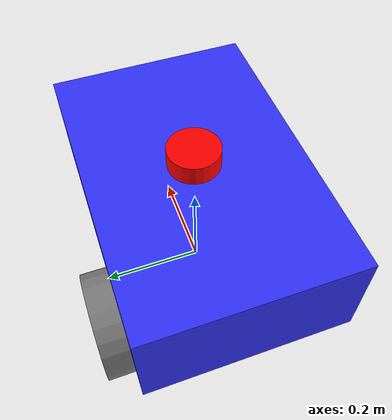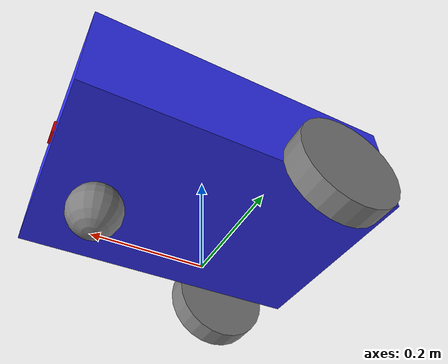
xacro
<?xml version="1.0"?>
<robot name="pickup_bot" xmlns:xacro="http://www.ros.org/wiki/xacro">

    <xacro:include filename="common_properties.xacro" />
    <xacro:include filename="mobile_base.xacro" />
    <xacro:include filename="lidar.xacro" />
    <xacro:include filename="camera.xacro" />
    <xacro:include filename="gazebo_control.xacro" />

</robot>

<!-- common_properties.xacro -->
<robot xmlns:xacro="http://www.ros.org/wiki/xacro">

    <material name="blue">
        <color rgba="0.2 0.2 1 1" />
    </material>

    <material name="grey">
        <color rgba="0.5 0.5 0.5 1" />
    </material>

    <material name="white">
        <color rgba="1 1 1 1" />
    </material>

    <material name="black">
        <color rgba="0 0 0 1" />
    </material>

    <material name="orange">
        <color rgba="1 0.3 0.1 1" />
    </material>

    <material name="red">
        <color rgba="1 0 0 1" />
    </material>

    <xacro:macro name="box_inertia" params="m l w h xyz rpy">
        <inertial>
            <origin xyz="${xyz}" rpy="${rpy}" />
            <mass value="${m}" />
            <inertia ixx="${(m/12) * (h*h + l*l)}" ixy="0" ixz="0"
                     iyy="${(m/12) * (w*w + l*l)}" iyz="0"
                     izz="${(m/12) * (w*w + h*h)}" />
        </inertial>
    </xacro:macro>

    <xacro:macro name="cylinder_inertia" params="m r h xyz rpy">
        <inertial>
            <origin xyz="${xyz}" rpy="${rpy}" />
            <mass value="${m}" />
            <inertia ixx="${(m/12) * (3*r*r + h*h)}" ixy="0" ixz="0"
                     iyy="${(m/12) * (3*r*r + h*h)}" iyz="0"
                     izz="${(m/2) * (r*r)}" />
        </inertial>
    </xacro:macro>

    <xacro:macro name="sphere_inertia" params="m r xyz rpy">
        <inertial>
            <origin xyz="${xyz}" rpy="${rpy}" />
            <mass value="${m}" />
            <inertia ixx="${(2/5) * m * r * r}" ixy="0" ixz="0"
                     iyy="${(2/5) * m * r * r}" iyz="0"
                     izz="${(2/5) * m * r * r}" />
        </inertial>
    </xacro:macro>

</robot>

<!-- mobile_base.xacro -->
<robot xmlns:xacro="http://www.ros.org/wiki/xacro">

    <xacro:property name="base_length" value="0.6" />
    <xacro:property name="base_width" value="0.4" />
    <xacro:property name="base_height" value="0.2" />
    <xacro:property name="wheel_radius" value="0.1" />
    <xacro:property name="wheel_length" value="0.05" />

    <link name="base_footprint" />

    <link name="base_link">
        <visual>
            <geometry>
                <box size="${base_length} ${base_width} ${base_height}" />
            </geometry>
            <origin xyz="0 0 ${base_height / 2.0}" rpy="0 0 0" />
            <material name="blue" />
        </visual>
        <collision>
            <geometry>
                <box size="${base_length} ${base_width} ${base_height}" />
            </geometry>
            <origin xyz="0 0 ${base_height / 2.0}" rpy="0 0 0" />
        </collision>
        <xacro:box_inertia m="5.0" l="${2*base_length}" w="${2*base_width}" h="${2*base_height}"
                           xyz="0 0 ${base_height / 2.0}" rpy="0 0 0" />
    </link>

    <xacro:macro name="wheel_link" params="prefix">
        <link name="${prefix}_wheel_link">
            <visual>
                <geometry>
                    <cylinder radius="${wheel_radius}" length="${wheel_length}" />
                </geometry>
                <origin xyz="0 0 0" rpy="${pi / 2.0} 0 0" />
                <material name="grey" />
            </visual>
            <collision>
                <geometry>
                    <cylinder radius="${wheel_radius}" length="${wheel_length}" />
                </geometry>
                <origin xyz="0 0 0" rpy="${pi / 2.0} 0 0" />
            </collision>
            <xacro:cylinder_inertia m="1.0" r="${2*wheel_radius}" h="${2*wheel_length}"
                                    xyz="0 0 0" rpy="${pi / 2.0} 0 0" />
        </link>
    </xacro:macro>

    <xacro:wheel_link prefix="right" />
    <xacro:wheel_link prefix="left" />

    <link name="caster_wheel_link">
        <visual>
            <geometry>
                <sphere radius="${wheel_radius / 2.0}" />
            </geometry>
            <origin xyz="0 0 0" rpy="0 0 0" />
            <material name="grey" />
        </visual>
        <collision>
            <geometry>
                <sphere radius="${wheel_radius / 2.0}" />
            </geometry>
            <origin xyz="0 0 0" rpy="0 0 0" />
        </collision>
        <xacro:sphere_inertia m="0.5" r="${2*wheel_radius / 2.0}"
                              xyz="0 0 0" rpy="0 0 0" />
    </link>

    <joint name="base_joint" type="fixed">
        <parent link="base_footprint" />
        <child link="base_link" />
        <origin xyz="0 0 ${wheel_radius}" rpy="0 0 0"/>
    </joint>

    <joint name="base_right_wheel_joint" type="continuous">
        <parent link="base_link" />
        <child link="right_wheel_link" />
        <origin xyz="${-base_length / 4.0} ${-(base_width + wheel_length) / 2.0} 0" rpy="0 0 0" />
        <axis xyz="0 1 0" />
    </joint>

    <joint name="base_left_wheel_joint" type="continuous">
        <parent link="base_link" />
        <child link="left_wheel_link" />
        <origin xyz="${-base_length / 4.0} ${(base_width + wheel_length) / 2.0} 0" rpy="0 0 0" />
        <axis xyz="0 1 0" />
    </joint>

    <joint name="base_caster_wheel_joint" type="fixed">
        <parent link="base_link" />
        <child link="caster_wheel_link" />
        <origin xyz="${base_length / 3.0} 0 ${-wheel_radius / 2.0}" rpy="0 0 0" />
    </joint>

    <gazebo reference="base_link">
        <material>Gazebo/Blue</material>
    </gazebo>

    <gazebo reference="right_wheel_link">
        <material>Gazebo/Grey</material>
    </gazebo>

    <gazebo reference="left_wheel_link">
        <material>Gazebo/Grey</material>
    </gazebo>

    <gazebo reference="caster_wheel_link">
        <material>Gazebo/Grey</material>
        <mu1 value="0.1" />
        <mu2 value="0.1" />
    </gazebo>

</robot>

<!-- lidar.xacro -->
<robot xmlns:xacro="http://www.ros.org/wiki/xacro">

    <link name="laser_frame" >
        <visual>
            <geometry>
                <cylinder radius="0.05" length="0.04" />
            </geometry>
            <origin xyz="0 0 0" rpy="0 0 0" />
            <material name="red" />
        </visual>
        <collision>
            <geometry>
                <cylinder radius="0.05" length="0.04" />
            </geometry>
            <origin xyz="0 0 0" rpy="0 0 0" />
        </collision>
    </link>

    <joint name = 'laser_joint' type = 'fixed'>
        <parent link = 'base_link' />
        <child link = 'laser_frame' />
        <origin xyz = '0 0 0.22' rpy = '0 0 0'/>
    </joint>

    <gazebo reference="laser_frame">
        <material>Gazebo/Red</material>

        <sensor name="laser" type="ray">
            <pose> 0 0 0 0 0 0 </pose>
            <visualize>true</visualize>
            <update_rate>10</update_rate>
            <ray>
                <scan>
                    <horizontal>
                        <samples>360</samples>
                        <min_angle>-3.14</min_angle>
                        <max_angle>3.14</max_angle>
                    </horizontal>
                </scan>
                <range>
                    <min>0.3</min>
                    <max>12</max>
                </range>
            </ray>
            <plugin name="laser_controller" filename="libgazebo_ros_ray_sensor.so">
                <ros>
                    <argument>~/out:=scan</argument>
                </ros>
                <output_type>sensor_msgs/LaserScan</output_type>
                <frame_name>laser_frame</frame_name>
            </plugin>
        </sensor>
    </gazebo>
</robot>

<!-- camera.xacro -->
<robot xmlns:xacro="http://www.ros.org/wiki/xacro" >

    <link name="camera_link">
        <visual>
            <geometry>
                <box size="0.010 0.03 0.03"/>
            </geometry>
            <material name="red"/>
        </visual>
    </link>

    <link name="camera_link_optical">
    </link>

    <joint name="camera_joint" type="fixed">
        <parent link="base_link"/>
        <child link="camera_link"/>
        <origin xyz="0.3 0 0.1" rpy="0 0 0"/>
    </joint>

    <joint name="camera_optical_joint" type="fixed">
        <parent link="camera_link"/>
        <child link="camera_link_optical"/>
        <origin xyz="0.3 0 0.1" rpy="${-pi/2} 0 ${-pi/2}"/>
    </joint>

    <gazebo reference="camera_link">
        <material>Gazebo/Red</material>

        <sensor name="camera" type="camera">
            <pose> 0 0 0 0 0 0 </pose>
            <visualize>true</visualize>
            <update_rate>10</update_rate>
            <camera>
                <horizontal_fov>1.089</horizontal_fov>
                <image>
                    <format>R8G8B8</format>
                    <width>640</width>
                    <height>480</height>
                </image>
                <clip>
                    <near>0.05</near>
                    <far>8.0</far>
                </clip>
            </camera>
            <plugin name="camera_controller" filename="libgazebo_ros_camera.so">
                <frame_name>camera_link_optical</frame_name>
            </plugin>
        </sensor>
    </gazebo>

</robot>
